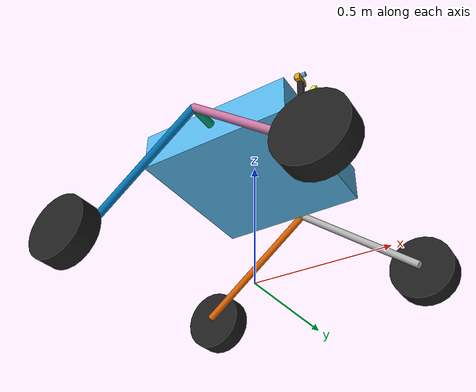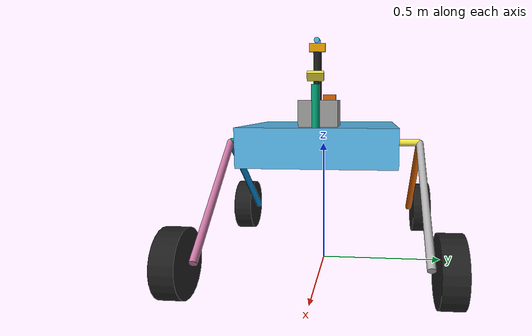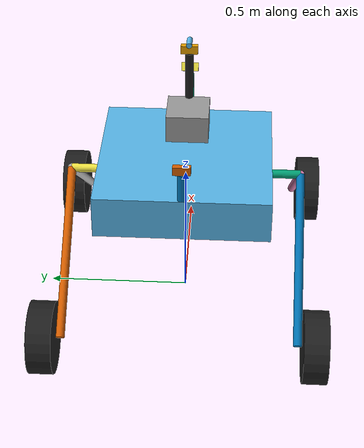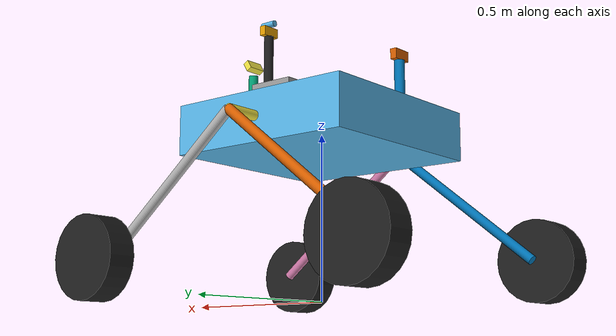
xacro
<?xml version="1.0"?>
<robot name="ika" xmlns:xacro="https://www.wiki.ros.org/xacro">
<xacro:include filename="$(find ika_description)/urdf/kayra_macros.xacro"/>
<xacro:include filename="$(find ika_description)/urdf/kayra_ros2_control.xacro"/>
<xacro:include filename="$(find ika_description)/urdf/kayra_gazebo.xacro"/>

<link name="base_footprint"/>

<link name="base_link">
    <xacro:rect_prism xyz="0 0 0" rpy="0 0 0" width="${base_width}" height="${base_height}" length="${base_length}" mass="15"/>
</link>

<joint name="base_joint" type="fixed">
    <origin xyz="0 0 ${chassis_height + base_height/2}" rpy="0 0 0"/>
    <parent link="base_footprint"/>
    <child link="base_link"/>
</joint>

<link name="right_diff_holder">
    <xacro:cylinder xyz="0 ${diff_holder_length/2} 0" rpy="${PI/2} 0 0" radius="${profile_radius}" length="${diff_holder_length}" mass="0.4"/>
</link>

<joint name="right_diff_holder_joint" type="fixed">
    <parent link="base_link"/>
    <child link="right_diff_holder"/>
    <origin xyz="0 ${-diff_holder_length - base_width/2} 0" rpy="0 0 0"/>
</joint>

<link name="left_diff_holder">
    <xacro:cylinder xyz="0 ${-diff_holder_length/2} 0" rpy="${PI/2} 0 0" radius="${profile_radius}" length="${diff_holder_length}" mass="0.4"/>
</link>

<joint name="left_diff_holder_joint" type="fixed">
    <parent link="base_link"/>
    <child link="left_diff_holder"/>
    <origin xyz="0 ${diff_holder_length + base_width/2} 0" rpy="0 0 0"/>
</joint>

<link name="rear_right_wheel_holder">
    <xacro:cylinder xyz="${wheel_holder_x/2} 0 ${wheel_holder_z/2}" rpy="0 ${wheel_holder_tilt} 0" radius="${profile_radius}" length="${wheel_holder_length}" mass="2"/>
</link>

<joint name="rear_right_wheel_holder_joint" type="fixed">
    <parent link="right_diff_holder"/>
    <child link="rear_right_wheel_holder"/>
    <origin xyz="${-wheel_holder_x} 0 ${-wheel_holder_z}" rpy="0 0 0"/>
</joint>

<link name="rear_left_wheel_holder">
    <xacro:cylinder xyz="${wheel_holder_x/2} 0 ${wheel_holder_z/2}" rpy="0 ${wheel_holder_tilt} 0" radius="${profile_radius}" length="${wheel_holder_length}" mass="2"/>
</link>

<joint name="rear_left_wheel_holder_joint" type="fixed">
    <parent link="left_diff_holder"/>
    <child link="rear_left_wheel_holder"/>
    <origin xyz="${-wheel_holder_x} 0 ${-wheel_holder_z}" rpy="0 0 0"/>
</joint>

<link name="front_right_wheel_holder">
    <xacro:cylinder xyz="${-wheel_holder_x/2} 0 ${wheel_holder_z/2}" rpy="0 ${-wheel_holder_tilt} 0" radius="${profile_radius}" length="${wheel_holder_length}" mass="2"/>
</link>

<joint name="front_right_wheel_holder_joint" type="fixed">
    <parent link="right_diff_holder"/>
    <child link="front_right_wheel_holder"/>
    <origin xyz="${wheel_holder_x} 0 ${-wheel_holder_z}" rpy="0 0 0"/>
</joint>

<link name="front_left_wheel_holder">
    <xacro:cylinder xyz="${-wheel_holder_x/2} 0 ${wheel_holder_z/2}" rpy="0 ${-wheel_holder_tilt} 0" radius="${profile_radius}" length="${wheel_holder_length}" mass="2"/>
</link>

<joint name="front_left_wheel_holder_joint" type="fixed">
    <parent link="left_diff_holder"/>
    <child link="front_left_wheel_holder"/>
    <origin xyz="${wheel_holder_x} 0 ${-wheel_holder_z}" rpy="0 0 0"/>
</joint>

<link name="front_right_wheel">
    <xacro:cylinder_wheel xyz="0 0 0" rpy="${PI/2} 0 0" radius="${wheel_radius}" length="${wheel_length}" mass="${wheel_mass}"/>
</link>
<joint name="front_right_wheel_joint" type="continuous">
    <parent link="front_right_wheel_holder"/>
    <child link="front_right_wheel"/>
    <origin xyz="0 ${-wheel_length/2 - profile_radius} 0" rpy="0 0 0"/>
    <axis xyz="0 1 0"/>
    <limit effort="${max_effort}" velocity="${max_velocity}"/>
</joint>

<link name="rear_right_wheel">
    <xacro:cylinder_wheel xyz="0 0 0" rpy="${PI/2} 0 0" radius="${wheel_radius}" length="${wheel_length}" mass="${wheel_mass}"/>
</link>
<joint name="rear_right_wheel_joint" type="continuous">
    <parent link="rear_right_wheel_holder"/>
    <child link="rear_right_wheel"/>
    <origin xyz="0 ${-wheel_length/2 - profile_radius} 0" rpy="0 0 0"/>
    <axis xyz="0 1 0"/>
    <limit effort="${max_effort}" velocity="${max_velocity}"/>
</joint>

<link name="front_left_wheel">
    <xacro:cylinder_wheel xyz="0 0 0" rpy="${PI/2} 0 0" radius="${wheel_radius}" length="${wheel_length}" mass="${wheel_mass}"/>
</link>
<joint name="front_left_wheel_joint" type="continuous">
    <parent link="front_left_wheel_holder"/>
    <child link="front_left_wheel"/>
    <origin xyz="0 ${wheel_length/2 + profile_radius} 0" rpy="0 0 0"/>
    <axis xyz="0 1 0"/>
    <limit effort="${max_effort}" velocity="${max_velocity}"/>
</joint>

<link name="rear_left_wheel">
    <xacro:cylinder_wheel xyz="0 0 0" rpy="${PI/2} 0 0" radius="${wheel_radius}" length="${wheel_length}" mass="${wheel_mass}"/>
</link>
<joint name="rear_left_wheel_joint" type="continuous">
    <parent link="rear_left_wheel_holder"/>
    <child link="rear_left_wheel"/>
    <origin xyz="0 ${wheel_length/2 + profile_radius} 0" rpy="0 0 0"/>
    <axis xyz="0 1 0"/>
    <limit effort="${max_effort}" velocity="${max_velocity}"/>
</joint>

<link name="imu_link">
    <xacro:cylinder xyz="0 0 0" rpy="0 0 0" radius="0.01" length="0.02" mass="0.1"/>
</link>
<joint name="imu_joint" type="fixed">
    <parent link="base_link"/>
    <child link="imu_link"/>
    <origin xyz="0 0 0" rpy="0 0 0"/>
</joint>

<link name="gps_link">
    <xacro:cylinder xyz="0 0 0" rpy="0 0 0" radius="0.01" length="0.02" mass="0.1"/>
</link>
<joint name="gps_joint" type="fixed">
    <parent link="base_link"/>
    <child link="gps_link"/>
    <origin xyz="0.05 0 0" rpy="0 0 0"/>
</joint>

<link name="shoot_platform">
    <xacro:rect_prism xyz="0 0 0" rpy="0 0 0" width="${shoot_platform_width}" height="${shoot_platform_height}" length="${shoot_platform_length}" mass="1.5"/>
</link>
<joint name="shoot_platform_joint" type="fixed">
    <parent link="base_link"/>
    <child link="shoot_platform"/>
    <origin xyz="${base_length/2 - shoot_platform_length/2 - 2*profile_radius - shoot_platform_offset} 0 ${base_height/2 + shoot_platform_height/2}" rpy="0 0 0"/>
</joint>

<link name="shoot_camera_holder">
    <xacro:cylinder xyz="0 0 0" rpy="0 0 0" radius="${profile_radius}" length="${shoot_camera_holder_length}" mass="10"/>
</link>

<joint name="shoot_camera_holder_joint" type="revolute">
    <parent link="shoot_platform"/>
    <child link="shoot_camera_holder"/>
    <origin xyz="${shoot_platform_length/2} 0 ${shoot_platform_height/2 + shoot_camera_holder_length/2}" rpy="0 0 0"/>
    <axis xyz="0 0 -1"/>
    <limit lower="${-PI/2}" upper="${PI/2}" effort="100.0" velocity="5.0"/>
    <dynamics damping="10.0" friction="1.0"/>
</joint>

<link name="shoot_camera">
    <xacro:rect_prism xyz="0 0 0" rpy="0 0 0" width="${camera_width}" height="${camera_height}" length="${camera_length}" mass="4"/>
</link>

<!-- Shooting camera initial orientation will be set later-->
<joint name="shoot_camera_joint" type="revolute">
    <parent link="shoot_camera_holder"/>
    <child link="shoot_camera"/>
    <origin xyz="0 0 ${shoot_camera_holder_length/2 + camera_height/2}" rpy="0 ${shoot_camera_tilt} 0"/>
    <axis xyz="0 -1 0"/>
    <limit lower="${-PI/2}" upper="${PI/2}" effort="100.0" velocity="5.0"/>
</joint>

<link name="shoot_laser">
    <xacro:cylinder xyz="0 0 0" rpy="0 0 0" radius="${shoot_laser_radius}" length="${shoot_laser_length}" mass="0.7"/>
</link>

<joint name="shoot_laser_joint" type="fixed">
    <parent link="shoot_camera"/>
    <child link="shoot_laser"/>
    <origin xyz="0 0 ${camera_height/2 + shoot_laser_radius}" rpy="${PI} ${-PI/2} 0"/>
</joint>

<link name="front_camera_holder">
    <xacro:cylinder xyz="0 0 0" rpy="0 0 0" radius="${profile_radius}" length="${front_camera_holder_length}" mass="0.8"/>
</link>
<joint name="front_camera_holder_joint" type="fixed">
    <parent link="shoot_platform"/>
    <child link="front_camera_holder"/>
    <origin xyz="${shoot_platform_length/2 + profile_radius + shoot_platform_offset} 0 ${front_camera_holder_length/2 - shoot_platform_height/2}"/>
</joint>

<link name="front_camera">
    <xacro:rect_prism xyz="0 0 0" rpy="0 0 0" width="${camera_width}" height="${camera_height}" length="${camera_length}" mass="0.2"/>
</link>

<joint name="front_camera_joint" type="fixed">
    <parent link="front_camera_holder"/>
    <child link="front_camera"/>
    <origin xyz="0 0 ${front_camera_holder_length/2 + camera_height}" rpy="0 ${front_camera_tilt} 0"/>
</joint>

<link name="rear_camera_holder">
    <xacro:cylinder xyz="0 0 0" rpy="0 0 0" radius="${profile_radius}" length="${rear_camera_holder_length}" mass="0.8"/>
</link>
<joint name="rear_camera_holder_joint" type="fixed">
    <parent link="base_link"/>
    <child link="rear_camera_holder"/>
    <origin xyz="${-base_length/2 + profile_radius} 0 ${rear_camera_holder_length/2 + base_height/2}"/>
</joint>

<link name="rear_camera">
    <xacro:rect_prism xyz="0 0 0" rpy="0 0 0" width="${camera_width}" height="${camera_height}" length="${camera_length}" mass="0.2"/>
</link>

<joint name="rear_camera_joint" type="fixed">
    <parent link="rear_camera_holder"/>
    <child link="rear_camera"/>
    <origin xyz="0 0 ${rear_camera_holder_length/2 + camera_height/2}" rpy="0 ${-PI} 0"/>
</joint>

</robot>

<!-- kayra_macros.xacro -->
<robot xmlns:xacro="https://www.wiki.ros.org/xacro">

<xacro:property name="wheel_radius" value="0.125"/>
<xacro:property name="wheel_length" value="0.085"/>
<xacro:property name="base_width" value="0.6"/>
<xacro:property name="base_length" value="0.6"/>
<xacro:property name="base_height" value="0.15"/>

<xacro:property name="chassis_height" value="0.43"/>

<xacro:property name="profile_radius" value="0.015"/>

<xacro:property name="diff_holder_length" value="0.1025"/>

<xacro:property name="camera_holder_height" value="0.6"/>
<xacro:property name="camera_holder_width" value="0.03"/>
<xacro:property name="camera_holder_length" value="0.03"/>
<xacro:property name="front_camera_holder_length" value="0.03"/>

<xacro:property name="wheel_holder_tilt" value="0.896"/>
<xacro:property name="wheel_holder_length" value="0.608"/>
<xacro:property name="wheel_holder_x" value="0.475"/>
<xacro:property name="wheel_holder_z" value="0.380"/>

<xacro:property name="camera_width" value="0.02"/>
<xacro:property name="camera_height" value="0.03"/>
<xacro:property name="camera_length" value="0.06"/>
<xacro:property name="front_camera_width" value="0.04"/>

<xacro:property name="shoot_platform_width" value="0.15"/>
<xacro:property name="shoot_platform_height" value="0.1"/>
<xacro:property name="shoot_platform_length" value="0.15"/>
<xacro:property name="shoot_platform_offset" value="0.05"/>

<xacro:property name="shoot_laser_length" value="0.05"/>
<xacro:property name="shoot_laser_radius" value="0.01"/>

<xacro:property name="shoot_camera_holder_length" value="0.175"/>
<xacro:property name="shoot_camera_tilt" value="0.0"/>

<xacro:property name="rear_camera_holder_length" value="0.1"/>

<xacro:property name="front_camera_holder_length" value="0.155"/>
<xacro:property name="front_camera_tilt" value="0.546"/>

<xacro:property name="camera_holder_length" value="0.6"/>
<xacro:property name="camera_tilt" value="0.762"/>

<xacro:property name="laser_length" value="0.05"/>
<xacro:property name="laser_radius" value="0.025"/>

<xacro:property name="base_mass" value="30"/>
<xacro:property name="holder_mass" value="0.75"/>
<xacro:property name="wheel_mass" value="1.2"/>

<xacro:property name="wheel_velocity" value="2.2"/>
<xacro:property name="PI" value="3.141592"/>

<xacro:property name="max_velocity" value="1000"/>
<xacro:property name="max_effort" value="10000"/>

<xacro:property name="wheel_kp" value="10000.0" />
<xacro:property name="wheel_kd" value="100.0" />
<xacro:property name="wheel_mu1" value="0.7" />
<xacro:property name="wheel_mu2" value="0.4" />
<xacro:property name="wheel_slip1" value="0.005" />
<xacro:property name="wheel_slip2" value="0.005" />

<xacro:macro name="cylinder" params="xyz rpy radius length mass">
    <visual>
        <origin xyz="${xyz}" rpy="${rpy}"/>
        <geometry>
            <cylinder radius="${radius}" length="${length}"/>
        </geometry>
    </visual>
    <inertial>
        <mass value="${mass}"/>
        <!-- Axis of rotation is y -->
        <inertia
                ixx="${mass * (3 * radius*radius + length*length) / 12}"
                iyy="${mass * (3 * radius*radius + length*length) / 12}"
                izz="${mass * radius*radius / 2}"
                ixy="0" ixz="0" iyz="0"
        />
    </inertial>
    <collision>
        <origin xyz="${xyz}" rpy="${rpy}"/>
        <geometry>
            <cylinder radius="${radius}" length="${length}"/>
        </geometry>
    </collision>
</xacro:macro>

<xacro:macro name="rect_prism" params="xyz rpy width length height mass">
    <visual>
        <origin xyz="${xyz}" rpy="${rpy}"/>
        <geometry>
            <box size="${width} ${length} ${height}"/>
        </geometry>
    </visual>
    <inertial>
        <mass value="${mass}"/>
        <inertia
                 ixx="${mass * (height*height + length*length) / 12}"
                 izz="${mass * (width*width + height*height) / 12}"
                 iyy="${mass * (width*width + length*length) / 12}"
                 ixy="0" ixz="0" iyz="0"
        />
    </inertial>
    <collision>
        <origin xyz="${xyz}" rpy="${rpy}"/>
        <geometry>
            <box size="${width} ${length} ${height}"/>
        </geometry>
    </collision>
</xacro:macro>

<xacro:macro name="cylinder_wheel" params="xyz rpy radius length mass">

    <visual>
        <origin xyz="${xyz}" rpy="${rpy}"/>
        <geometry>
            <cylinder radius="${radius}" length="${length}"/>
        </geometry>
    </visual>
    <inertial>
        <mass value="${mass}"/>
        <!-- Axis of rotation is y -->
        <inertia
                ixx="${mass * (3 * radius*radius + length*length) / 12}"
                iyy="${mass * (3 * radius*radius + length*length) / 12}"
                izz="${mass * radius*radius / 2}"
                ixy="0" ixz="0" iyz="0"
        />
    </inertial>
    <collision>
        <origin xyz="${xyz}" rpy="${rpy}"/>
        <geometry>
            <cylinder radius="${radius}" length="${length}"/>
        </geometry>
        <surface>
            <friction>
                <fdir1>1 0 0</fdir1>
                <kp>${wheel_kp}</kp> <!-- kp and kd for rubber -->
                <kd>${wheel_kd}</kd>
                <mu>${wheel_mu1}</mu>
                <mu2>${wheel_mu2}</mu2>
                <slip1>${wheel_slip1}</slip1>
                <slip2>${wheel_slip2}</slip2>
            </friction>
        </surface>
    </collision>
</xacro:macro>
</robot>
